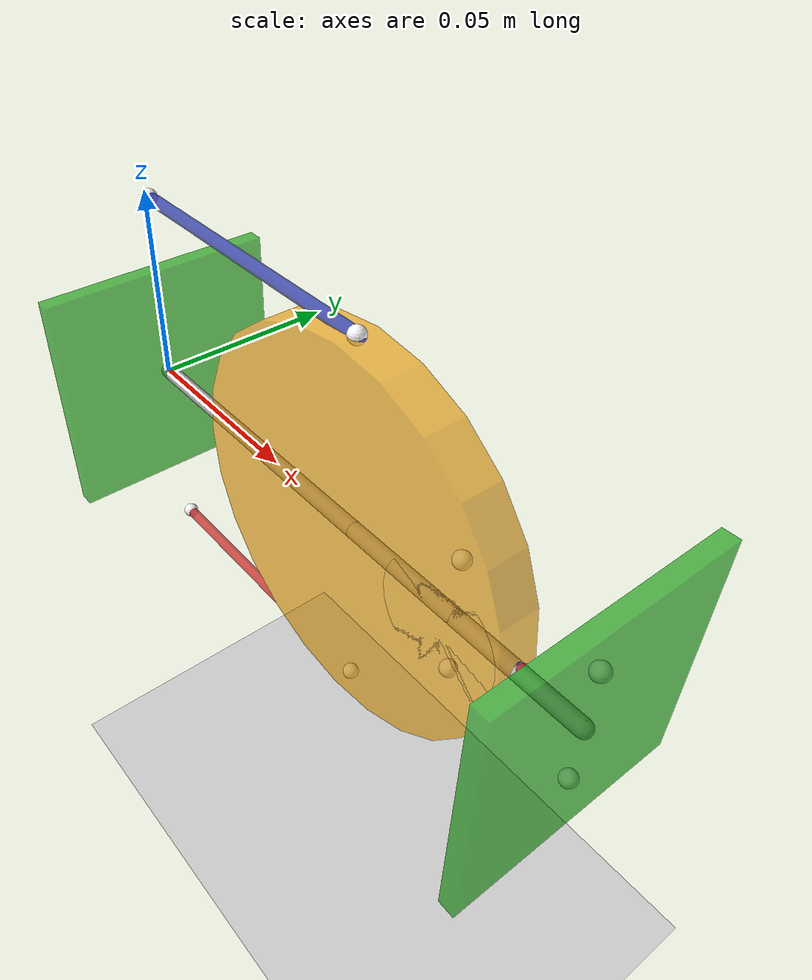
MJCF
<mujoco model="task_3">
    <option gravity="0 -9.81 0" integrator="Euler"/>
    <statistic center="0.07200000000000001 0 0" extent="0.25"/>

    <default>
        <joint axis="0 1 0" damping="0.00005"/>
        <geom type="capsule" size="0.002"/>
    </default>

    <asset>
        <texture name="texplane" type="2d" builtin="checker"
                 rgb1="0.85 0.85 0.85" rgb2="0.85 0.85 0.85"
                 width="512" height="512" mark="none"/>
        <material name="matplane" reflectance="0"
                  texture="texplane" texrepeat="1 1"
                  texuniform="true"/>
    </asset>

    <worldbody>

        <light pos="0 0 0.3"/>
        <light pos="0 0 3" dir="0 0 -1" directional="false"/>

        <geom name="floor" type="plane" pos="0 0 -0.14"
              size="0 0 1"
              material="matplane" conaffinity="15" condim="3"/>

        <body pos="0 0 0">
            <geom name="left_support" type="box"
                  size="0.002 0.03 0.03"
                  rgba="0.0314 0.6353 0.0 0.65"/>

            <geom fromto="0 0 0 0.079 0 0"
                  rgba="0.7 0.7 0.7 1"
                  contype="0" conaffinity="0"/>

            <site name="s1" pos="0.002 0 0.049"  size="0.002" rgba="1 1 1 1"/>
            <site name="s2" pos="0.002 0 -0.049" size="0.002" rgba="1 1 1 1"/>

            <body pos="0.079 0 0">
                <joint name="axis1"/>

                <geom fromto="0 0 0 0.032 0 0"
                      rgba="0.7 0.7 0.7 1"/>

                <body name="pulley1" pos="0 0 0">
                    <joint name="p1_hinge" type="hinge"
                           axis="0 1 0" stiffness="5" damping="0.005"/>

                    <geom name="Pulley1" type="cylinder"
                          fromto="0 0.005 0 0 -0.005 0"
                          size="0.049"
                          rgba="1.0 0.6588 0.0 0.65"/>

                    <site name="s3" pos="0 0 0.049"  size="0.002" rgba="1 1 1 1"/>
                    <site name="s4" pos="0 0 -0.049" size="0.002" rgba="1 1 1 1"/>
                </body>

                <body pos="0.032 0 0">
                    <joint name="axis2"/>

                    <geom fromto="0 0 0 0.033 0 0"
                          rgba="0.7 0.7 0.7 1"/>

                    <body name="pulley2" pos="0 0 0">
                        <joint name="p2_hinge" type="hinge"
                               axis="0 1 0" stiffness="5" damping="0.005"/>

                        <geom name="Pulley2" type="cylinder"
                              fromto="0 0.005 0 0 -0.005 0"
                              size="0.016"
                              rgba="1.0 0.6588 0.0 0.65"/>

                        <site name="s5" pos="0 0 0.016"  size="0.002" rgba="1 1 1 1"/>
                        <site name="s6" pos="0 0 -0.016" size="0.002" rgba="1 1 1 1"/>

                        <site name="s7" pos="0.033 0 0.016"  size="0.002" rgba="1 1 1 1"/>
                        <site name="s8" pos="0.033 0 -0.016" size="0.002" rgba="1 1 1 1"/>
                    </body>

                    <body>
                        <geom name="right_support" type="box"
                              size="0.002 0.03 0.03"
                              rgba="0.0314 0.6353 0.0 0.65"
                              pos="0.033 0 0"/>
                    </body>
                </body>
            </body>
        </body>
    </worldbody>

    <tendon>
        <!-- тяга 1: (0, 15, 162, 0.65) -->
        <spatial stiffness="5" width="0.0015"
                 rgba="0.0 0.0588 0.6353 0.65">
            <site site="s1"/>
            <geom geom="Pulley1" sidesite="s3"/>
            <site site="s3"/>
            <geom geom="Pulley2" sidesite="s6"/>
            <site site="s8"/>
        </spatial>

        <spatial stiffness="5" width="0.0015"
                 rgba="0.7843 0.0 0.0 0.65">
            <site site="s2"/>
            <geom geom="Pulley1" sidesite="s4"/>
            <site site="s4"/>
            <geom geom="Pulley2" sidesite="s5"/>
            <site site="s7"/>
        </spatial>
    </tendon>
</mujoco>
